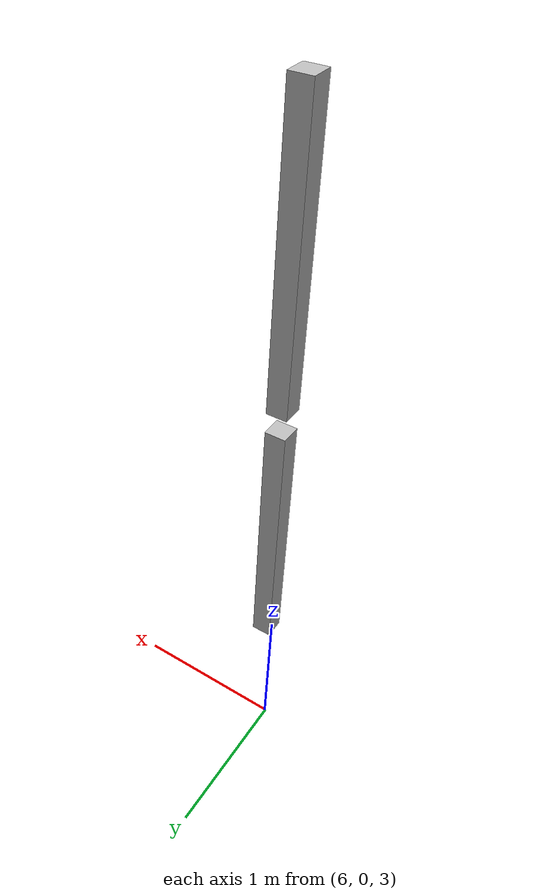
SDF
<sdf version="1.7">
 <world name="default">
  <model name="orthogonal_747_2.000.15_TS">
   <static>1</static>
   <link name="z_link_3_2_6">
    <inertial>
     <mass>1</mass>
     <inertia>
      <ixx>0.166667</ixx>
      <ixy>0</ixy>
      <ixz>0</ixz>
      <iyy>0.166667</iyy>
      <iyz>0</iyz>
      <izz>0.166667</izz>
     </inertia>
    </inertial>
    <pose>12.9 4.3 6.45 0 -0 0</pose>
    <visual name="visual_0">
     <laser_retro>3095</laser_retro>
     <geometry><box><size>0.15 1e-06 2</size></box></geometry>
     <material>
      <script><name>Gazebo/Grey</name><uri>file://media/materials/scripts/gazebo.material</uri></script>
      <shader type="pixel"><normal_map>__default__</normal_map></shader>
      <ambient>0.678 0.498 0.659 1</ambient>
      <diffuse>0.7 0.7 0.7 1</diffuse>
      <specular>0.01 0.01 0.01 1</specular>
      <emissive>0 0 0 1</emissive>
     </material>
     <pose>0 -0.075 0 0 -0 0</pose>
     <transparency>1</transparency>
    </visual>
    <visual name="visual_1">
     <laser_retro>3096</laser_retro>
     <geometry><box><size>0.15 1e-06 2</size></box></geometry>
     <material>
      <script><name>Gazebo/Grey</name><uri>file://media/materials/scripts/gazebo.material</uri></script>
      <shader type="pixel"><normal_map>__default__</normal_map></shader>
      <ambient>0.447 0.624 0.812 1</ambient>
      <diffuse>0.7 0.7 0.7 1</diffuse>
      <specular>0.01 0.01 0.01 1</specular>
      <emissive>0 0 0 1</emissive>
     </material>
     <pose>0 0.075 0 0 -0 0</pose>
     <transparency>1</transparency>
    </visual>
    <visual name="visual_2">
     <laser_retro>3097</laser_retro>
     <geometry><box><size>0.15 0.15 1e-06</size></box></geometry>
     <material>
      <script><name>Gazebo/Grey</name><uri>file://media/materials/scripts/gazebo.material</uri></script>
      <shader type="pixel"><normal_map>__default__</normal_map></shader>
      <ambient>0.988 0.686 0.243 1</ambient>
      <diffuse>0.7 0.7 0.7 1</diffuse>
      <specular>0.01 0.01 0.01 1</specular>
      <emissive>0 0 0 1</emissive>
     </material>
     <pose>0 0 -1 0 -0 0</pose>
     <transparency>1</transparency>
    </visual>
    <visual name="visual_3">
     <laser_retro>3098</laser_retro>
     <geometry><box><size>1e-06 0.15 2</size></box></geometry>
     <material>
      <script><name>Gazebo/Grey</name><uri>file://media/materials/scripts/gazebo.material</uri></script>
      <shader type="pixel"><normal_map>__default__</normal_map></shader>
      <ambient>0.988 0.914 0.31 1</ambient>
      <diffuse>0.7 0.7 0.7 1</diffuse>
      <specular>0.01 0.01 0.01 1</specular>
      <emissive>0 0 0 1</emissive>
     </material>
     <pose>0.075 0 0 0 -0 0</pose>
     <transparency>1</transparency>
    </visual>
    <visual name="visual_4">
     <laser_retro>3099</laser_retro>
     <geometry><box><size>0.15 0.15 1e-06</size></box></geometry>
     <material>
      <script><name>Gazebo/Grey</name><uri>file://media/materials/scripts/gazebo.material</uri></script>
      <shader type="pixel"><normal_map>__default__</normal_map></shader>
      <ambient>0.937 0.161 0.161 1</ambient>
      <diffuse>0.7 0.7 0.7 1</diffuse>
      <specular>0.01 0.01 0.01 1</specular>
      <emissive>0 0 0 1</emissive>
     </material>
     <pose>0 0 1 0 -0 0</pose>
     <transparency>1</transparency>
    </visual>
    <visual name="visual_5">
     <laser_retro>3100</laser_retro>
     <geometry><box><size>1e-06 0.15 2</size></box></geometry>
     <material>
      <script><name>Gazebo/Grey</name><uri>file://media/materials/scripts/gazebo.material</uri></script>
      <shader type="pixel"><normal_map>__default__</normal_map></shader>
      <ambient>0.541 0.886 0.204 1</ambient>
      <diffuse>0.7 0.7 0.7 1</diffuse>
      <specular>0.01 0.01 0.01 1</specular>
      <emissive>0 0 0 1</emissive>
     </material>
     <pose>-0.075 0 0 0 -0 0</pose>
     <transparency>1</transparency>
    </visual>
    <visual name="visual_texture">
     <geometry><box><size>0.149985 0.149985 1.9998</size></box></geometry>
     <material>
      <script>
       <uri>model://BASE_MODELS/simple_block_v2_textured/materials/scripts</uri>
       <uri>model://BASE_MODELS/simple_block_v2_textured/materials/textures</uri>
       <name>metal</name>
      </script>
     </material>
     <laser_retro>3101</laser_retro>
    </visual>
    <collision name="collision">
     <geometry><box><size>0.15 0.15 2</size></box></geometry>
     <surface>
      <friction>
       <ode><mu>1</mu><mu2>1</mu2><fdir1>0 0 0</fdir1><slip1>0</slip1><slip2>0</slip2></ode>
       <torsional>
        <coefficient>1</coefficient>
        <patch_radius>0</patch_radius>
        <surface_radius>0</surface_radius>
        <use_patch_radius>1</use_patch_radius>
        <ode><slip>0</slip></ode>
       </torsional>
      </friction>
      <bounce><restitution_coefficient>0</restitution_coefficient><threshold>1e+06</threshold></bounce>
      <contact>
       <collide_without_contact>0</collide_without_contact>
       <collide_without_contact_bitmask>1</collide_without_contact_bitmask>
       <collide_bitmask>1</collide_bitmask>
       <ode>
        <soft_cfm>0</soft_cfm>
        <soft_erp>0.2</soft_erp>
        <kp>1e+13</kp>
        <kd>1</kd>
        <max_vel>0.01</max_vel>
        <min_depth>0</min_depth>
       </ode>
       <bullet>
        <split_impulse>1</split_impulse>
        <split_impulse_penetration_threshold>-0.01</split_impulse_penetration_threshold>
        <soft_cfm>0</soft_cfm>
        <soft_erp>0.2</soft_erp>
        <kp>1e+13</kp>
        <kd>1</kd>
       </bullet>
      </contact>
     </surface>
    </collision>
   </link>
   <link name="z_link_4_2_6">
    <inertial>
     <mass>1</mass>
     <inertia>
      <ixx>0.166667</ixx>
      <ixy>0</ixy>
      <ixz>0</ixz>
      <iyy>0.166667</iyy>
      <iyz>0</iyz>
      <izz>0.166667</izz>
     </inertia>
    </inertial>
    <pose>12.9 4.3 8.6 0 -0 0</pose>
    <visual name="visual_0">
     <laser_retro>3998</laser_retro>
     <geometry><box><size>0.15 1e-06 2</size></box></geometry>
     <material>
      <script><name>Gazebo/Grey</name><uri>file://media/materials/scripts/gazebo.material</uri></script>
      <shader type="pixel"><normal_map>__default__</normal_map></shader>
      <ambient>0.678 0.498 0.659 1</ambient>
      <diffuse>0.7 0.7 0.7 1</diffuse>
      <specular>0.01 0.01 0.01 1</specular>
      <emissive>0 0 0 1</emissive>
     </material>
     <pose>0 -0.075 0 0 -0 0</pose>
     <transparency>1</transparency>
    </visual>
    <visual name="visual_1">
     <laser_retro>3999</laser_retro>
     <geometry><box><size>0.15 1e-06 2</size></box></geometry>
     <material>
      <script><name>Gazebo/Grey</name><uri>file://media/materials/scripts/gazebo.material</uri></script>
      <shader type="pixel"><normal_map>__default__</normal_map></shader>
      <ambient>0.447 0.624 0.812 1</ambient>
      <diffuse>0.7 0.7 0.7 1</diffuse>
      <specular>0.01 0.01 0.01 1</specular>
      <emissive>0 0 0 1</emissive>
     </material>
     <pose>0 0.075 0 0 -0 0</pose>
     <transparency>1</transparency>
    </visual>
    <visual name="visual_2">
     <laser_retro>4000</laser_retro>
     <geometry><box><size>0.15 0.15 1e-06</size></box></geometry>
     <material>
      <script><name>Gazebo/Grey</name><uri>file://media/materials/scripts/gazebo.material</uri></script>
      <shader type="pixel"><normal_map>__default__</normal_map></shader>
      <ambient>0.988 0.686 0.243 1</ambient>
      <diffuse>0.7 0.7 0.7 1</diffuse>
      <specular>0.01 0.01 0.01 1</specular>
      <emissive>0 0 0 1</emissive>
     </material>
     <pose>0 0 -1 0 -0 0</pose>
     <transparency>1</transparency>
    </visual>
    <visual name="visual_3">
     <laser_retro>4001</laser_retro>
     <geometry><box><size>1e-06 0.15 2</size></box></geometry>
     <material>
      <script><name>Gazebo/Grey</name><uri>file://media/materials/scripts/gazebo.material</uri></script>
      <shader type="pixel"><normal_map>__default__</normal_map></shader>
      <ambient>0.988 0.914 0.31 1</ambient>
      <diffuse>0.7 0.7 0.7 1</diffuse>
      <specular>0.01 0.01 0.01 1</specular>
      <emissive>0 0 0 1</emissive>
     </material>
     <pose>0.075 0 0 0 -0 0</pose>
     <transparency>1</transparency>
    </visual>
    <visual name="visual_4">
     <laser_retro>4002</laser_retro>
     <geometry><box><size>0.15 0.15 1e-06</size></box></geometry>
     <material>
      <script><name>Gazebo/Grey</name><uri>file://media/materials/scripts/gazebo.material</uri></script>
      <shader type="pixel"><normal_map>__default__</normal_map></shader>
      <ambient>0.937 0.161 0.161 1</ambient>
      <diffuse>0.7 0.7 0.7 1</diffuse>
      <specular>0.01 0.01 0.01 1</specular>
      <emissive>0 0 0 1</emissive>
     </material>
     <pose>0 0 1 0 -0 0</pose>
     <transparency>1</transparency>
    </visual>
    <visual name="visual_5">
     <laser_retro>4003</laser_retro>
     <geometry><box><size>1e-06 0.15 2</size></box></geometry>
     <material>
      <script><name>Gazebo/Grey</name><uri>file://media/materials/scripts/gazebo.material</uri></script>
      <shader type="pixel"><normal_map>__default__</normal_map></shader>
      <ambient>0.541 0.886 0.204 1</ambient>
      <diffuse>0.7 0.7 0.7 1</diffuse>
      <specular>0.01 0.01 0.01 1</specular>
      <emissive>0 0 0 1</emissive>
     </material>
     <pose>-0.075 0 0 0 -0 0</pose>
     <transparency>1</transparency>
    </visual>
    <visual name="visual_texture">
     <geometry><box><size>0.149985 0.149985 1.9998</size></box></geometry>
     <material>
      <script>
       <uri>model://BASE_MODELS/simple_block_v2_textured/materials/scripts</uri>
       <uri>model://BASE_MODELS/simple_block_v2_textured/materials/textures</uri>
       <name>metal</name>
      </script>
     </material>
     <laser_retro>4004</laser_retro>
    </visual>
    <collision name="collision">
     <geometry><box><size>0.15 0.15 2</size></box></geometry>
     <surface>
      <friction>
       <ode><mu>1</mu><mu2>1</mu2><fdir1>0 0 0</fdir1><slip1>0</slip1><slip2>0</slip2></ode>
       <torsional>
        <coefficient>1</coefficient>
        <patch_radius>0</patch_radius>
        <surface_radius>0</surface_radius>
        <use_patch_radius>1</use_patch_radius>
        <ode><slip>0</slip></ode>
       </torsional>
      </friction>
      <bounce><restitution_coefficient>0</restitution_coefficient><threshold>1e+06</threshold></bounce>
      <contact>
       <collide_without_contact>0</collide_without_contact>
       <collide_without_contact_bitmask>1</collide_without_contact_bitmask>
       <collide_bitmask>1</collide_bitmask>
       <ode>
        <soft_cfm>0</soft_cfm>
        <soft_erp>0.2</soft_erp>
        <kp>1e+13</kp>
        <kd>1</kd>
        <max_vel>0.01</max_vel>
        <min_depth>0</min_depth>
       </ode>
       <bullet>
        <split_impulse>1</split_impulse>
        <split_impulse_penetration_threshold>-0.01</split_impulse_penetration_threshold>
        <soft_cfm>0</soft_cfm>
        <soft_erp>0.2</soft_erp>
        <kp>1e+13</kp>
        <kd>1</kd>
       </bullet>
      </contact>
     </surface>
    </collision>
   </link>
   <pose>-6.47624 -5 -2.5 0 -0 0</pose>
  </model>
 </world>
</sdf>
